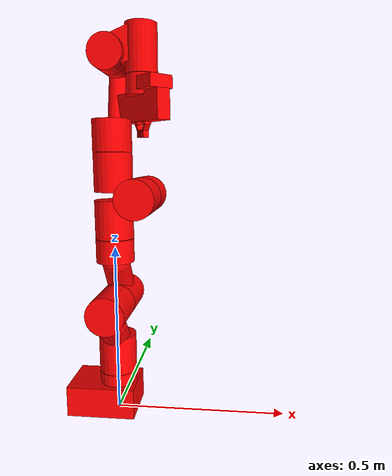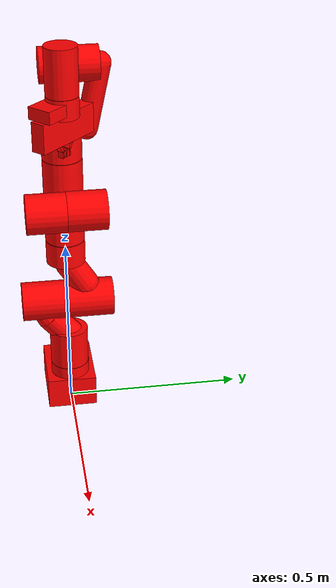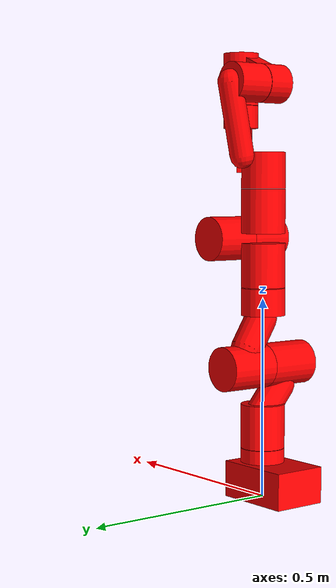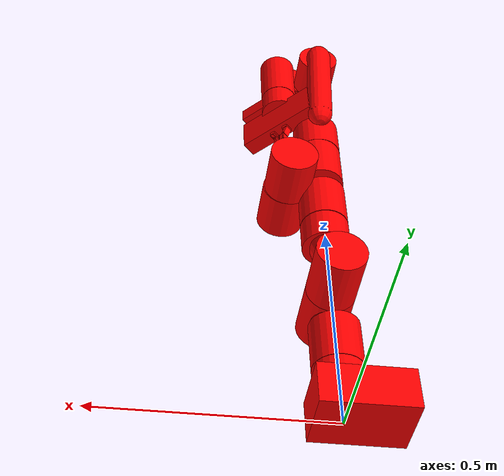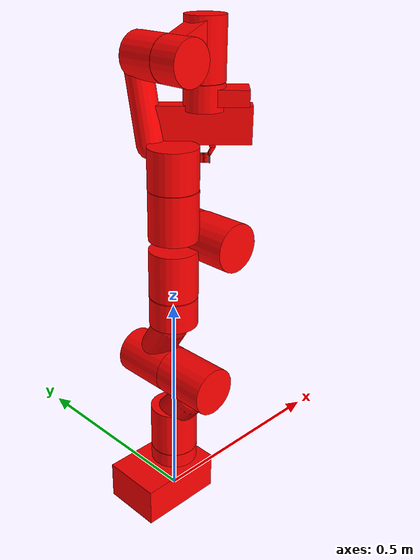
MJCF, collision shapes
<mujoco model="panda">
  <compiler angle="radian" meshdir="panda_mesh" autolimits="true"/>

  <option integrator="implicitfast"/>

  <default>
    <default class="panda">
      <material specular="0.5" shininess="0.25"/>
      <joint armature="0.1" damping="1" axis="0 0 1" range="-2.8973 2.8973"/>
      <general dyntype="none" biastype="affine" ctrlrange="-2.8973 2.8973" forcerange="-87 87"/>
      <default class="finger">
        <joint axis="0 1 0" type="slide" range="0 0.04"/>
      </default>

      <default class="visual">
        <geom type="mesh" contype="0" conaffinity="0" group="2"/>
      </default>
      <default class="collision">
        <geom type="mesh" group="3" rgba="1 0 0 0.5"/>
        <default class="fingertip_pad_collision_1">
          <geom type="box" size="0.0085 0.004 0.0085" pos="0 0.0055 0.0445"/>
        </default>
        <default class="fingertip_pad_collision_2">
          <geom type="box" size="0.003 0.002 0.003" pos="0.0055 0.002 0.05"/>
        </default>
        <default class="fingertip_pad_collision_3">
          <geom type="box" size="0.003 0.002 0.003" pos="-0.0055 0.002 0.05"/>
        </default>
        <default class="fingertip_pad_collision_4">
          <geom type="box" size="0.003 0.002 0.0035" pos="0.0055 0.002 0.0395"/>
        </default>
        <default class="fingertip_pad_collision_5">
          <geom type="box" size="0.003 0.002 0.0035" pos="-0.0055 0.002 0.0395"/>
        </default>
      </default>
    </default>
  </default>

  <asset>
    <material class="panda" name="white" rgba="1 1 1 1"/>
    <material class="panda" name="off_white" rgba="0.901961 0.921569 0.929412 1"/>
    <material class="panda" name="black" rgba="0.25 0.25 0.25 1"/>
    <material class="panda" name="green" rgba="0 1 0 1"/>
    <material class="panda" name="light_blue" rgba="0.039216 0.541176 0.780392 1"/>

    <!-- Visual meshes -->
    <mesh file="link0_0.obj"/>
    <mesh file="link0_1.obj"/>
    <mesh file="link0_2.obj"/>
    <mesh file="link0_3.obj"/>
    <mesh file="link0_4.obj"/>
    <mesh file="link0_5.obj"/>
    <mesh file="link0_7.obj"/>
    <mesh file="link0_8.obj"/>
    <mesh file="link0_9.obj"/>
    <mesh file="link0_10.obj"/>
    <mesh file="link0_11.obj"/>
    <mesh file="link1.obj"/>
    <mesh file="link2.obj"/>
    <mesh file="link3_0.obj"/>
    <mesh file="link3_1.obj"/>
    <mesh file="link3_2.obj"/>
    <mesh file="link3_3.obj"/>
    <mesh file="link4_0.obj"/>
    <mesh file="link4_1.obj"/>
    <mesh file="link4_2.obj"/>
    <mesh file="link4_3.obj"/>
    <mesh file="link5_0.obj"/>
    <mesh file="link5_1.obj"/>
    <mesh file="link5_2.obj"/>
    <mesh file="link6_0.obj"/>
    <mesh file="link6_1.obj"/>
    <mesh file="link6_2.obj"/>
    <mesh file="link6_3.obj"/>
    <mesh file="link6_4.obj"/>
    <mesh file="link6_5.obj"/>
    <mesh file="link6_6.obj"/>
    <mesh file="link6_7.obj"/>
    <mesh file="link6_8.obj"/>
    <mesh file="link6_9.obj"/>
    <mesh file="link6_10.obj"/>
    <mesh file="link6_11.obj"/>
    <mesh file="link6_12.obj"/>
    <mesh file="link6_13.obj"/>
    <mesh file="link6_14.obj"/>
    <mesh file="link6_15.obj"/>
    <mesh file="link6_16.obj"/>
    <mesh file="link7_0.obj"/>
    <mesh file="link7_1.obj"/>
    <mesh file="link7_2.obj"/>
    <mesh file="link7_3.obj"/>
    <mesh file="link7_4.obj"/>
    <mesh file="link7_5.obj"/>
    <mesh file="link7_6.obj"/>
    <mesh file="link7_7.obj"/>
    <mesh file="hand_0.obj"/>
    <mesh file="hand_1.obj"/>
    <mesh file="hand_2.obj"/>
    <mesh file="hand_3.obj"/>
    <mesh file="hand_4.obj"/>
    <mesh file="finger_0.obj"/>
    <mesh file="finger_1.obj"/>
  </asset>

  <worldbody>
    <light name="top" pos="0 0 2" mode="trackcom"/>
    <body name="link0" childclass="panda">
      <inertial mass="0.629769" pos="-0.041018 -0.00014 0.049974"
        fullinertia="0.00315 0.00388 0.004285 8.2904e-7 0.00015 8.2299e-6"/>
      <geom mesh="link0_0" material="off_white" class="visual"/>
      <geom mesh="link0_1" material="black" class="visual"/>
      <geom mesh="link0_2" material="off_white" class="visual"/>
      <geom mesh="link0_3" material="black" class="visual"/>
      <geom mesh="link0_4" material="off_white" class="visual"/>
      <geom mesh="link0_5" material="black" class="visual"/>
      <geom mesh="link0_7" material="white" class="visual"/>
      <geom mesh="link0_8" material="white" class="visual"/>
      <geom mesh="link0_9" material="black" class="visual"/>
      <geom mesh="link0_10" material="off_white" class="visual"/>
      <geom mesh="link0_11" material="white" class="visual"/>
	  <geom class="collision" type="box" pos="-0.040 0.000 0.045" size="0.100 0.070 0.045" />
	  <geom class="collision" type="cylinder" pos="0.000 0.000 0.070" size="0.055 0.055 0.070" />
      <body name="link1" pos="0 0 0.333">
        <inertial mass="4.970684" pos="0.003875 0.002081 -0.04762"
          fullinertia="0.70337 0.70661 0.0091170 -0.00013900 0.0067720 0.019169"/>
        <joint name="joint1"/>
        <geom material="white" mesh="link1" class="visual"/>
		<geom class="collision" type="cylinder" pos="0.000 0.000 -0.152" size="0.055 0.055 0.040" />
		<geom class="collision" type="cylinder" fromto="0.000 -0.130 0.000 0.000 0.000 0.000" size="0.055" />
		<geom class="collision" type="capsule" fromto="0.000 0.012 -0.129 0.000 -0.053 -0.053" size="0.040" />
        <body name="link2" quat="1 -1 0 0">
          <inertial mass="0.646926" pos="-0.003141 -0.02872 0.003495"
            fullinertia="0.0079620 2.8110e-2 2.5995e-2 -3.925e-3 1.0254e-2 7.04e-4"/>
          <joint name="joint2" range="-1.7628 1.7628"/>
          <geom material="white" mesh="link2" class="visual"/>
		  <geom class="collision" type="cylinder" fromto="0.000 0.000 0.000 0.000 0.000 0.130" size="0.055" />
		  <geom class="collision" type="cylinder" fromto="0.000 -0.126 0.000 0.000 -0.194 0.000" size="0.055" />
		  <geom class="collision" type="capsule" fromto="0.000 -0.045 0.053 0.000 -0.118  0.007" size="0.040" />
          <body name="link3" pos="0 -0.316 0" quat="1 1 0 0">
            <joint name="joint3"/>
            <inertial mass="3.228604" pos="2.7518e-2 3.9252e-2 -6.6502e-2"
              fullinertia="3.7242e-2 3.6155e-2 1.083e-2 -4.761e-3 -1.1396e-2 -1.2805e-2"/>
            <geom mesh="link3_0" material="white" class="visual"/>
            <geom mesh="link3_1" material="white" class="visual"/>
            <geom mesh="link3_2" material="white" class="visual"/>
            <geom mesh="link3_3" material="black" class="visual"/>
		    <geom class="collision" type="cylinder" fromto="0.080 0.000 0.000 0.080 0.110 0.000" size="0.055" />
		    <geom class="collision" type="cylinder" fromto="0.000 0.000 -0.010 0.000 0.000 -0.120" size="0.055" />
            <body name="link4" pos="0.0825 0 0" quat="1 1 0 0">
              <inertial mass="3.587895" pos="-5.317e-2 1.04419e-1 2.7454e-2"
                fullinertia="2.5853e-2 1.9552e-2 2.8323e-2 7.796e-3 -1.332e-3 8.641e-3"/>
              <joint name="joint4" range="-3.0718 -0.0698"/>
              <geom mesh="link4_0" material="white" class="visual"/>
              <geom mesh="link4_1" material="white" class="visual"/>
              <geom mesh="link4_2" material="black" class="visual"/>
              <geom mesh="link4_3" material="white" class="visual"/>
		      <geom class="collision" type="cylinder" fromto="0.000 0.000 0.000 0.000 0.000 0.110" size="0.055" />
		      <geom class="collision" type="cylinder" fromto="-0.082 0.014 0.000 -0.082 0.124 0.000" size="0.055" />
              <body name="link5" pos="-0.0825 0.384 0" quat="1 -1 0 0">
                <inertial mass="1.225946" pos="-1.1953e-2 4.1065e-2 -3.8437e-2"
                  fullinertia="3.5549e-2 2.9474e-2 8.627e-3 -2.117e-3 -4.037e-3 2.29e-4"/>
                <joint name="joint5"/>
                <geom mesh="link5_0" material="black" class="visual"/>
                <geom mesh="link5_1" material="white" class="visual"/>
                <geom mesh="link5_2" material="white" class="visual"/>
		        <geom class="collision" type="cylinder" fromto="0.000 0.015 0.000 0.000 0.105 0.000" size="0.048" />
		        <geom class="collision" type="cylinder" fromto="0.000 0.000 -0.169 0.000 0.000 -0.259" size="0.055" />
		        <geom class="collision" type="capsule" fromto="0.000 0.108 0.000 0.000 0.069 -0.180" size="0.03" />
                <body name="link6" quat="1 1 0 0">
                  <inertial mass="1.666555" pos="6.0149e-2 -1.4117e-2 -1.0517e-2"
                    fullinertia="1.964e-3 4.354e-3 5.433e-3 1.09e-4 -1.158e-3 3.41e-4"/>
                  <joint name="joint6" range="-0.0175 3.7525"/>
                  <geom mesh="link6_0" material="off_white" class="visual"/>
                  <geom mesh="link6_1" material="white" class="visual"/>
                  <geom mesh="link6_2" material="black" class="visual"/>
                  <geom mesh="link6_3" material="white" class="visual"/>
                  <geom mesh="link6_4" material="white" class="visual"/>
                  <geom mesh="link6_5" material="white" class="visual"/>
                  <geom mesh="link6_6" material="white" class="visual"/>
                  <geom mesh="link6_7" material="light_blue" class="visual"/>
                  <geom mesh="link6_8" material="light_blue" class="visual"/>
                  <geom mesh="link6_9" material="black" class="visual"/>
                  <geom mesh="link6_10" material="black" class="visual"/>
                  <geom mesh="link6_11" material="white" class="visual"/>
                  <geom mesh="link6_12" material="green" class="visual"/>
                  <geom mesh="link6_13" material="white" class="visual"/>
                  <geom mesh="link6_14" material="black" class="visual"/>
                  <geom mesh="link6_15" material="black" class="visual"/>
                  <geom mesh="link6_16" material="white" class="visual"/>
		          <geom class="collision" type="cylinder" fromto="0.000 0.000 -0.014 0.000 0.000 0.053" size="0.048" />
		          <geom class="collision" type="cylinder" fromto="0.088 -0.051 0.000 0.088 0.079 0.000" size="0.044" />
		          <geom class="collision" type="box" pos="0.033 0.014 0.008" size="0.050 0.042 0.025" euler="0 0 0.401"/>
                  <body name="link7" pos="0.088 0 0" quat="1 1 0 0">
                    <inertial mass="7.35522e-01" pos="1.0517e-2 -4.252e-3 6.1597e-2"
                      fullinertia="1.2516e-2 1.0027e-2 4.815e-3 -4.28e-4 -1.196e-3 -7.41e-4"/>
                    <joint name="joint7"/>
                    <geom mesh="link7_0" material="white" class="visual"/>
                    <geom mesh="link7_1" material="black" class="visual"/>
                    <geom mesh="link7_2" material="black" class="visual"/>
                    <geom mesh="link7_3" material="black" class="visual"/>
                    <geom mesh="link7_4" material="black" class="visual"/>
                    <geom mesh="link7_5" material="black" class="visual"/>
                    <geom mesh="link7_6" material="black" class="visual"/>
                    <geom mesh="link7_7" material="white" class="visual"/>
		            <geom class="collision" type="cylinder" fromto="0.000 0.000 0.052 0.000 0.000 0.108" size="0.044" />
		            <geom class="collision" type="box" pos="0.040 0.040 0.079" size="0.035 0.035 0.017" euler="0 0 0.785"/>
                    <body name="hand" pos="0 0 0.107" quat="0.9238795 0 0 -0.3826834">
                      <inertial mass="0.73" pos="-0.01 0 0.03" diaginertia="0.001 0.0025 0.0017"/>
                      <geom mesh="hand_0" material="off_white" class="visual"/>
                      <geom mesh="hand_1" material="black" class="visual"/>
                      <geom mesh="hand_2" material="black" class="visual"/>
                      <geom mesh="hand_3" material="white" class="visual"/>
                      <geom mesh="hand_4" material="off_white" class="visual"/>
		              <geom class="collision" type="box" pos="0.000 0.000 0.030" size="0.020 0.100 0.040" />
                      <body name="left_finger" pos="0 0 0.0584">
                        <inertial mass="0.015" pos="0 0 0" diaginertia="2.375e-6 2.375e-6 7.5e-7"/>
                        <joint name="finger_joint1" class="finger"/>
                        <geom mesh="finger_0" material="off_white" class="visual"/>
                        <geom mesh="finger_1" material="black" class="visual"/>
						<geom class="collision" type="box" pos="0.00000 0.01265 0.04490" size="0.00900 0.00175 0.00900" euler="0.00000 0.00000 0.00000"/> <!-- fingertip -->
						<geom class="collision" type="box" pos="0.00000 0.01133 0.03641" size="0.00900 0.00277 0.00169" euler="1.11701 0.00000 0.00000"/>
						<geom class="collision" type="box" pos="0.00000 0.01270 0.03440" size="0.00900 0.00290 0.00155" euler="0.00000 0.00000 0.00000"/>
						<geom class="collision" type="box" pos="0.00000 0.01193 0.03442" size="0.00900 0.00186 0.00277" euler="2.09440 0.00000 0.00000"/>
						<geom class="collision" type="box" pos="0.00000 0.01760 0.02570" size="0.00900 0.00340 0.00980" euler="0.52360 0.00000 0.00000"/> <!-- mphalanx -->
						<geom class="collision" type="box" pos="0.00000 0.01840 0.00950" size="0.01050 0.00680 0.00950" euler="0.00000 0.00000 0.00000"/> <!-- pphalanx -->
						<geom class="collision" type="box" pos="0.00000 0.01450 0.00200" size="0.01050 0.01200 0.00200" euler="0.00000 0.00000 0.00000"/> <!-- base -->
                        <geom class="fingertip_pad_collision_1"/>
                        <geom class="fingertip_pad_collision_2"/>
                        <geom class="fingertip_pad_collision_3"/>
                        <geom class="fingertip_pad_collision_4"/>
                        <geom class="fingertip_pad_collision_5"/>
                      </body>
                      <body name="right_finger" pos="0 0 0.0584" quat="0 0 0 1">
                        <inertial mass="0.015" pos="0 0 0" diaginertia="2.375e-6 2.375e-6 7.5e-7"/>
                        <joint name="finger_joint2" class="finger"/>
                        <geom mesh="finger_0" material="off_white" class="visual"/>
                        <geom mesh="finger_1" material="black" class="visual"/>
						<geom class="collision" type="box" pos="0.00000 0.01265 0.04490" size="0.00900 0.00175 0.00900" euler="0.00000 0.00000 0.00000"/> <!-- fingertip -->
						<geom class="collision" type="box" pos="0.00000 0.01133 0.03641" size="0.00900 0.00277 0.00169" euler="1.11701 0.00000 0.00000"/>
						<geom class="collision" type="box" pos="0.00000 0.01270 0.03440" size="0.00900 0.00290 0.00155" euler="0.00000 0.00000 0.00000"/>
						<geom class="collision" type="box" pos="0.00000 0.01193 0.03442" size="0.00900 0.00186 0.00277" euler="2.09440 0.00000 0.00000"/>
						<geom class="collision" type="box" pos="0.00000 0.01760 0.02570" size="0.00900 0.00340 0.00980" euler="0.52360 0.00000 0.00000"/> <!-- mphalanx -->
						<geom class="collision" type="box" pos="0.00000 0.01840 0.00950" size="0.01050 0.00680 0.00950" euler="0.00000 0.00000 0.00000"/> <!-- pphalanx -->
						<geom class="collision" type="box" pos="0.00000 0.01450 0.00200" size="0.01050 0.01200 0.00200" euler="0.00000 0.00000 0.00000"/> <!-- base -->
                        <geom class="fingertip_pad_collision_1"/>
                        <geom class="fingertip_pad_collision_2"/>
                        <geom class="fingertip_pad_collision_3"/>
                        <geom class="fingertip_pad_collision_4"/>
                        <geom class="fingertip_pad_collision_5"/>
                      </body>
                    </body>
                  </body>
                </body>
              </body>
            </body>
          </body>
        </body>
      </body>
    </body>
  </worldbody>

  <equality>
    <joint joint1="finger_joint1" joint2="finger_joint2" solimp="0.95 0.99 0.001" solref="0.005 1"/>
  </equality>

  <actuator>
    <general class="panda" name="actuator1" joint="joint1" gainprm="4500" biasprm="0 -4500 -450"/>
    <general class="panda" name="actuator2" joint="joint2" gainprm="4500" biasprm="0 -4500 -450"
      ctrlrange="-1.7628 1.7628"/>
    <general class="panda" name="actuator3" joint="joint3" gainprm="3500" biasprm="0 -3500 -350"/>
    <general class="panda" name="actuator4" joint="joint4" gainprm="3500" biasprm="0 -3500 -350"
      ctrlrange="-3.0718 -0.0698"/>
    <general class="panda" name="actuator5" joint="joint5" gainprm="2000" biasprm="0 -2000 -200" forcerange="-12 12"/>
    <general class="panda" name="actuator6" joint="joint6" gainprm="2000" biasprm="0 -2000 -200" forcerange="-12 12"
      ctrlrange="-0.0175 3.7525"/>
    <general class="panda" name="actuator7" joint="joint7" gainprm="2000" biasprm="0 -2000 -200" forcerange="-12 12"/>
    <!-- Remap original ctrlrange (0, 0.04) to (0, 255): 0.04 * 100 / 255 = 0.01568627451 -->
    <general class="finger" name="actuator8" joint="finger_joint1" gainprm="0.01568627451" biasprm="0 -100 -10" forcerange="-100 100" ctrlrange="0 255"/>
  </actuator>

  <keyframe>
    <key name="home" qpos="0 0 0 -1.57079 0 1.57079 -0.7853 0.04 0.04" ctrl="0 0 0 -1.57079 0 1.57079 -0.7853 255"/>
  </keyframe>
</mujoco>
